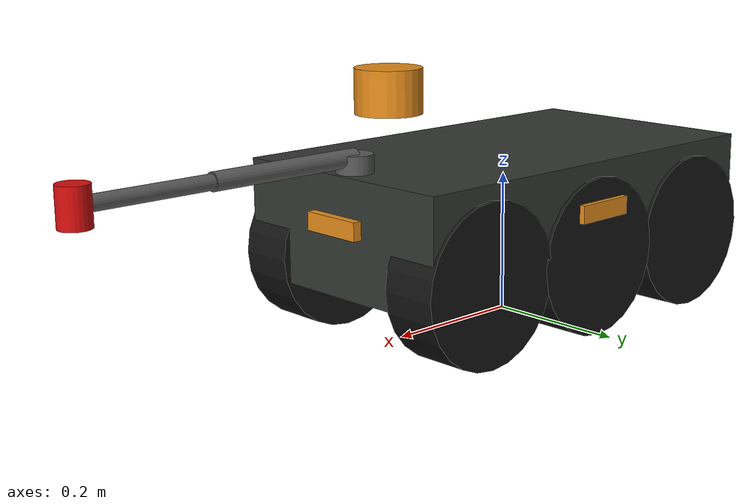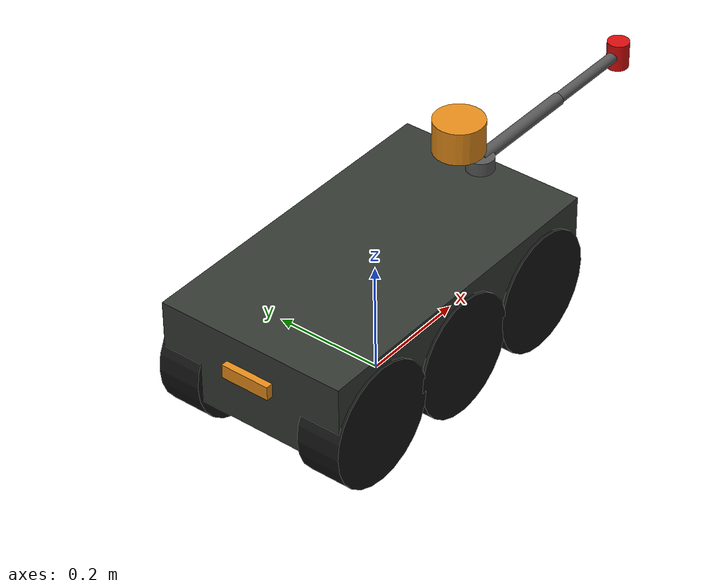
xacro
<?xml version="1.0"?>
<robot name="ares_g" xmlns:xacro="http://www.ros.org/wiki/xacro">

  <!-- ===================== Parameters (L0.3 spec) ===================== -->
  <xacro:property name="base_length" value="0.62"/>   <!-- 620 mm -->
  <xacro:property name="base_width"  value="0.35"/>   <!-- 350 mm -->
  <xacro:property name="base_height" value="0.16"/>   <!-- hull height -->
  <xacro:property name="ground_clearance" value="0.08"/>  <!-- 80 mm -->
  <xacro:property name="base_mass"   value="10.6"/>   <!-- hull+SEB+battery+detection+comms -->

  <xacro:property name="wheel_radius" value="0.11"/>  <!-- 220 mm dia -->
  <xacro:property name="wheel_width"  value="0.08"/>
  <xacro:property name="wheel_mass"   value="0.4"/>
  <xacro:property name="rocker_mass"  value="1.2"/>
  <xacro:property name="bogie_mass"   value="0.9"/>

  <!-- Longitudinal axle positions: wheelbase (front->rear) = 0.42 m -->
  <xacro:property name="axle_front_x" value="0.21"/>
  <xacro:property name="axle_mid_x"   value="0.0"/>
  <xacro:property name="axle_rear_x"  value="-0.21"/>
  <!-- Track 280 mm centre-centre -> half = 0.14 -->
  <xacro:property name="wheel_y"      value="0.14"/>
  <xacro:property name="wheel_z"      value="0.0"/>

  <!-- Rocker-bogie geometry -->
  <xacro:property name="rocker_y"       value="0.12"/>
  <xacro:property name="wheel_out"      value="0.02"/>
  <xacro:property name="rocker_z"       value="0.07"/>
  <xacro:property name="bogie_pivot_x"  value="0.105"/>
  <xacro:property name="wheel_drop"     value="${wheel_z - rocker_z}"/>
  <xacro:property name="pivot_limit"    value="0.6"/>
  <xacro:property name="steer_limit"    value="0.6"/>   <!-- kingpin travel (rad) -->

  <xacro:property name="PI" value="3.1415926535897931"/>

  <!-- ===================== Inertia macros ===================== -->
  <xacro:macro name="box_inertia" params="m x y z">
    <inertial>
      <mass value="${m}"/>
      <inertia
        ixx="${(1.0/12.0)*m*(y*y + z*z)}" ixy="0.0" ixz="0.0"
        iyy="${(1.0/12.0)*m*(x*x + z*z)}" iyz="0.0"
        izz="${(1.0/12.0)*m*(x*x + y*y)}"/>
    </inertial>
  </xacro:macro>

  <xacro:macro name="cylinder_inertia" params="m r h">
    <inertial>
      <mass value="${m}"/>
      <inertia
        ixx="${(1.0/12.0)*m*(3*r*r + h*h)}" ixy="0.0" ixz="0.0"
        iyy="${(1.0/12.0)*m*(3*r*r + h*h)}" iyz="0.0"
        izz="${0.5*m*r*r}"/>
    </inertial>
  </xacro:macro>

  <!-- ===================== base ===================== -->
  <link name="base_footprint"/>
  <joint name="base_footprint_joint" type="fixed">
    <parent link="base_footprint"/>
    <child link="base_link"/>
    <origin xyz="0 0 ${wheel_radius}" rpy="0 0 0"/>
  </joint>

  <link name="base_link">
    <!-- Hull sits from ground_clearance to ground_clearance+base_height;
         its centre is (ground_clearance + base_height/2 - wheel_radius) above base_link. -->
    <visual>
      <origin xyz="0 0 ${ground_clearance + base_height/2 - wheel_radius}" rpy="0 0 0"/>
      <geometry><box size="${base_length} ${base_width} ${base_height}"/></geometry>
      <material name="ares_hull"/>
    </visual>
    <collision>
      <origin xyz="0 0 ${ground_clearance + base_height/2 - wheel_radius}" rpy="0 0 0"/>
      <geometry><box size="${base_length} ${base_width} ${base_height}"/></geometry>
    </collision>
    <xacro:box_inertia m="${base_mass}" x="${base_length}" y="${base_width}" z="${base_height}"/>
  </link>

  <!-- ===================== Wheel macro ===================== -->
  <xacro:macro name="wheel" params="prefix parent x y z">
    <link name="${prefix}_wheel_link">
      <visual>
        <origin xyz="0 0 0" rpy="${PI/2} 0 0"/>
        <geometry><cylinder radius="${wheel_radius}" length="${wheel_width}"/></geometry>
        <material name="ares_wheel"/>
      </visual>
      <collision>
        <origin xyz="0 0 0" rpy="${PI/2} 0 0"/>
        <geometry><cylinder radius="${wheel_radius}" length="${wheel_width}"/></geometry>
      </collision>
      <xacro:cylinder_inertia m="${wheel_mass}" r="${wheel_radius}" h="${wheel_width}"/>
    </link>
    <joint name="${prefix}_wheel_joint" type="continuous">
      <parent link="${parent}"/>
      <child link="${prefix}_wheel_link"/>
      <origin xyz="${x} ${y} ${z}" rpy="0 0 0"/>
      <axis xyz="0 1 0"/>
      <limit effort="40.0" velocity="20.0"/>
      <dynamics damping="0.1" friction="0.1"/>
    </joint>
  </xacro:macro>

  <!-- Small steering knuckle link (kingpin) -->
  <xacro:macro name="knuckle" params="name">
    <link name="${name}">
      <visual>
        <geometry><cylinder radius="0.02" length="0.04"/></geometry>
        <material name="ares_steer"/>
      </visual>
      <xacro:cylinder_inertia m="0.05" r="0.02" h="0.04"/>
    </link>
  </xacro:macro>

  <!-- ===================== Rocker-bogie + four-station steering ===================== -->
  <!--   side="left"/"right", reflect=+1/-1 for +y/-y -->
  <xacro:macro name="rocker_bogie" params="side reflect">

    <!-- Rocker arm (passive pitch pivot on the body) -->
    <link name="${side}_rocker_link">
      <visual>
        <origin xyz="${(axle_rear_x + bogie_pivot_x)/2} 0 0" rpy="0 0 0"/>
        <geometry><box size="${bogie_pivot_x - axle_rear_x} 0.04 0.04"/></geometry>
        <material name="ares_link"/>
      </visual>
      <collision>
        <origin xyz="${(axle_rear_x + bogie_pivot_x)/2} 0 0" rpy="0 0 0"/>
        <geometry><box size="${bogie_pivot_x - axle_rear_x} 0.04 0.04"/></geometry>
      </collision>
      <xacro:box_inertia m="${rocker_mass}" x="${bogie_pivot_x - axle_rear_x}" y="0.04" z="0.04"/>
    </link>
    <joint name="${side}_rocker_joint" type="revolute">
      <parent link="base_link"/>
      <child link="${side}_rocker_link"/>
      <origin xyz="0 ${reflect * rocker_y} ${rocker_z}" rpy="0 0 0"/>
      <axis xyz="0 1 0"/>
      <limit lower="${-pivot_limit}" upper="${pivot_limit}" effort="200.0" velocity="10.0"/>
      <dynamics damping="1.0" friction="0.5"/>
    </joint>

    <!-- Bogie: passive pitch pivot on the rocker, then a kingpin steer joint -->
    <link name="${side}_bogie_link">
      <visual>
        <origin xyz="0 0 0" rpy="0 0 0"/>
        <geometry><box size="${axle_front_x - axle_mid_x} 0.04 0.04"/></geometry>
        <material name="ares_link"/>
      </visual>
      <collision>
        <origin xyz="0 0 0" rpy="0 0 0"/>
        <geometry><box size="${axle_front_x - axle_mid_x} 0.04 0.04"/></geometry>
      </collision>
      <xacro:box_inertia m="${bogie_mass}" x="${axle_front_x - axle_mid_x}" y="0.04" z="0.04"/>
    </link>
    <!-- passive bogie pitch pivot -->
    <xacro:knuckle name="${side}_bogie_carrier"/>
    <joint name="${side}_bogie_joint" type="revolute">
      <parent link="${side}_rocker_link"/>
      <child link="${side}_bogie_carrier"/>
      <origin xyz="${bogie_pivot_x} 0 0" rpy="0 0 0"/>
      <axis xyz="0 1 0"/>
      <limit lower="${-pivot_limit}" upper="${pivot_limit}" effort="200.0" velocity="10.0"/>
      <dynamics damping="1.0" friction="0.5"/>
    </joint>
    <joint name="${side}_bogie_steer_joint" type="revolute">
      <parent link="${side}_bogie_carrier"/>
      <child link="${side}_bogie_link"/>
      <origin xyz="0 0 0" rpy="0 0 0"/>
      <axis xyz="0 0 1"/>
      <limit lower="${-steer_limit}" upper="${steer_limit}" effort="30.0" velocity="3.0"/>
      <dynamics damping="0.3" friction="0.2"/>
    </joint>

    <!-- Front + mid wheels ride on the (steered) bogie -->
    <xacro:wheel prefix="front_${side}" parent="${side}_bogie_link"
                x="${axle_front_x - bogie_pivot_x}" y="${reflect * wheel_out}" z="${wheel_drop}"/>
    <xacro:wheel prefix="mid_${side}" parent="${side}_bogie_link"
                x="${axle_mid_x - bogie_pivot_x}" y="${reflect * wheel_out}" z="${wheel_drop}"/>

    <!-- STEERED STATION #3/#4: rear wheel kingpin (individually steered).
         Real revolute kingpin, position-actuated (see note above). -->
    <xacro:knuckle name="${side}_rear_knuckle"/>
    <joint name="${side}_rear_steer_joint" type="revolute">
      <parent link="${side}_rocker_link"/>
      <child link="${side}_rear_knuckle"/>
      <origin xyz="${axle_rear_x} ${reflect * wheel_out} ${wheel_drop}" rpy="0 0 0"/>
      <axis xyz="0 0 1"/>
      <limit lower="${-steer_limit}" upper="${steer_limit}" effort="30.0" velocity="3.0"/>
      <dynamics damping="0.3" friction="0.2"/>
    </joint>
    <xacro:wheel prefix="rear_${side}" parent="${side}_rear_knuckle"
                x="0" y="0" z="0"/>

  </xacro:macro>

  <xacro:rocker_bogie side="left"  reflect="1"/>
  <xacro:rocker_bogie side="right" reflect="-1"/>

  <!-- ===================== Sensor mounts (L0.3 6.1) ===================== -->
  <!-- Sensor mast: LiDAR (Livox Mid-360 class) on top-front -->
  <link name="lidar_link">
    <visual>
      <geometry><cylinder radius="0.045" length="0.06"/></geometry>
      <material name="ares_sensor"/>
    </visual>
    <collision><geometry><cylinder radius="0.045" length="0.06"/></geometry></collision>
    <xacro:cylinder_inertia m="0.3" r="0.045" h="0.06"/>
  </link>
  <joint name="lidar_joint" type="fixed">
    <parent link="base_link"/>
    <child link="lidar_link"/>
    <origin xyz="0.22 0 ${ground_clearance + base_height - wheel_radius + 0.10}" rpy="0 0 0"/>
  </joint>

  <!-- IMU (VN-200 class) at the body centre -->
  <link name="imu_link">
    <visual><geometry><box size="0.03 0.03 0.01"/></geometry><material name="ares_sensor"/></visual>
    <xacro:box_inertia m="0.05" x="0.03" y="0.03" z="0.01"/>
  </link>
  <joint name="imu_joint" type="fixed">
    <parent link="base_link"/><child link="imu_link"/>
    <origin xyz="0 0 ${ground_clearance + base_height/2 - wheel_radius}" rpy="0 0 0"/>
  </joint>

  <!-- Forward stereo (RealSense D455 class) -->
  <xacro:macro name="cam" params="name x y z yaw">
    <link name="${name}_link">
      <visual><geometry><box size="0.025 0.09 0.025"/></geometry><material name="ares_sensor"/></visual>
      <xacro:box_inertia m="0.07" x="0.025" y="0.09" z="0.025"/>
    </link>
    <joint name="${name}_joint" type="fixed">
      <parent link="base_link"/><child link="${name}_link"/>
      <origin xyz="${x} ${y} ${z}" rpy="0 0 ${yaw}"/>
    </joint>
    <link name="${name}_optical_link"/>
    <joint name="${name}_optical_joint" type="fixed">
      <parent link="${name}_link"/><child link="${name}_optical_link"/>
      <origin xyz="0 0 0" rpy="${-PI/2} 0 ${-PI/2}"/>
    </joint>
  </xacro:macro>
  <xacro:cam name="front_cam" x="${base_length/2}" y="0"    z="${ground_clearance + base_height*0.6 - wheel_radius}" yaw="0"/>
  <xacro:cam name="left_cam"  x="0" y="${base_width/2}"  z="${ground_clearance + base_height*0.6 - wheel_radius}" yaw="${PI/2}"/>
  <xacro:cam name="rear_cam"  x="${-base_length/2}" y="0" z="${ground_clearance + base_height*0.6 - wheel_radius}" yaw="${PI}"/>

  <!-- ===================== Marker arm (L0.3 6.5): 2-DOF, 0.40 m reach ===================== -->
  <link name="marker_base_link">
    <visual><geometry><cylinder radius="0.025" length="0.05"/></geometry><material name="ares_link"/></visual>
    <xacro:cylinder_inertia m="0.1" r="0.025" h="0.05"/>
  </link>
  <joint name="marker_base_joint" type="fixed">
    <parent link="base_link"/><child link="marker_base_link"/>
    <origin xyz="${base_length/2 - 0.03} 0 ${ground_clearance + base_height - wheel_radius}" rpy="0 0 0"/>
  </joint>

  <!-- Shoulder: pitch -->
  <link name="marker_link1">
    <visual><origin xyz="0.11 0 0" rpy="0 ${PI/2} 0"/>
      <geometry><cylinder radius="0.012" length="0.22"/></geometry><material name="ares_link"/></visual>
    <xacro:cylinder_inertia m="0.15" r="0.012" h="0.22"/>
  </link>
  <joint name="marker_shoulder_joint" type="revolute">
    <parent link="marker_base_link"/><child link="marker_link1"/>
    <origin xyz="0 0 0.02" rpy="0 0 0"/>
    <axis xyz="0 1 0"/>
    <limit lower="${-PI/2}" upper="${PI/2}" effort="10.0" velocity="2.0"/>
    <dynamics damping="0.2" friction="0.1"/>
  </joint>

  <!-- Elbow: pitch, ends in the paint-canister tip -->
  <link name="marker_link2">
    <visual><origin xyz="0.09 0 0" rpy="0 ${PI/2} 0"/>
      <geometry><cylinder radius="0.010" length="0.18"/></geometry><material name="ares_link"/></visual>
    <visual><origin xyz="0.18 0 0" rpy="0 0 0"/>
      <geometry><cylinder radius="0.02" length="0.05"/></geometry><material name="ares_marker"/></visual>
    <xacro:cylinder_inertia m="0.15" r="0.010" h="0.18"/>
  </link>
  <joint name="marker_elbow_joint" type="revolute">
    <parent link="marker_link1"/><child link="marker_link2"/>
    <origin xyz="0.22 0 0" rpy="0 0 0"/>
    <axis xyz="0 1 0"/>
    <limit lower="${-PI/2}" upper="${PI/2}" effort="10.0" velocity="2.0"/>
    <dynamics damping="0.2" friction="0.1"/>
  </joint>

  <!-- ===================== Drive/actuation args ===================== -->
  <!-- When true, the diff-drive plugin publishes odom->base_footprint (fine for
       the bare sim); set false when robot_localization owns that TF. -->
  <xacro:arg name="publish_wheel_odom_tf" default="true"/>
  <xacro:arg name="cmd_vel_topic" default="wheel_cmd_vel"/>

  <!-- Materials + Gazebo plugins (drive, steering, sensors) -->
  <xacro:include filename="$(find rover_description)/urdf/ares_g.gazebo.xacro"/>

</robot>

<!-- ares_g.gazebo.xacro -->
<robot xmlns:xacro="http://www.ros.org/wiki/xacro">

  <xacro:arg name="publish_wheel_odom_tf" default="true"/>
  <xacro:arg name="cmd_vel_topic" default="wheel_cmd_vel"/>

  <!-- Camera sensors need a GL/rendering context; disable them for headless
       gzserver on machines without a GPU (Codespaces) to avoid a crash. -->
  <xacro:arg name="enable_cameras" default="true"/>

  <!-- ===================== RViz visual materials ===================== -->
  <material name="ares_hull">   <color rgba="0.20 0.22 0.20 1.0"/></material>
  <material name="ares_wheel">  <color rgba="0.08 0.08 0.08 1.0"/></material>
  <material name="ares_link">   <color rgba="0.35 0.35 0.35 1.0"/></material>
  <material name="ares_steer">  <color rgba="0.55 0.55 0.10 1.0"/></material>
  <material name="ares_sensor"> <color rgba="0.90 0.55 0.10 1.0"/></material>
  <material name="ares_marker"> <color rgba="0.85 0.05 0.05 1.0"/></material>

  <!-- ===================== Gazebo visual colours ===================== -->
  <gazebo reference="base_link"><material>Gazebo/DarkGrey</material></gazebo>
  <gazebo reference="lidar_link"><material>Gazebo/Orange</material></gazebo>
  <gazebo reference="imu_link"><material>Gazebo/Orange</material></gazebo>
  <gazebo reference="front_cam_link"><material>Gazebo/Orange</material></gazebo>
  <gazebo reference="left_cam_link"><material>Gazebo/Orange</material></gazebo>
  <gazebo reference="rear_cam_link"><material>Gazebo/Orange</material></gazebo>
  <gazebo reference="left_rocker_link"><material>Gazebo/DarkGrey</material></gazebo>
  <gazebo reference="right_rocker_link"><material>Gazebo/DarkGrey</material></gazebo>
  <gazebo reference="left_bogie_link"><material>Gazebo/Grey</material></gazebo>
  <gazebo reference="right_bogie_link"><material>Gazebo/Grey</material></gazebo>
  <gazebo reference="marker_link2"><material>Gazebo/Red</material></gazebo>

  <!-- Wheel friction: high mu for traction on the rocker-bogie -->
  <xacro:macro name="wheel_gazebo" params="prefix">
    <gazebo reference="${prefix}_wheel_link">
      <material>Gazebo/Black</material>
      <mu1>1.3</mu1>
      <mu2>1.3</mu2>
      <kp>500000.0</kp>
      <kd>10.0</kd>
      <minDepth>0.001</minDepth>
      <maxVel>10.0</maxVel>
      <fdir1>1 0 0</fdir1>
    </gazebo>
  </xacro:macro>
  <xacro:wheel_gazebo prefix="front_left"/>
  <xacro:wheel_gazebo prefix="front_right"/>
  <xacro:wheel_gazebo prefix="mid_left"/>
  <xacro:wheel_gazebo prefix="mid_right"/>
  <xacro:wheel_gazebo prefix="rear_left"/>
  <xacro:wheel_gazebo prefix="rear_right"/>

  <!-- ===================== Skid-steer drive (3 wheel pairs, ARES-G dims) ===================== -->
  <!-- Proven gazebo_ros plugin: reliable motion + /odom. Skid-steer is the L0.3
       degraded-mode fallback; the four kingpins add real steering on top. -->
  <gazebo>
    <plugin name="diff_drive" filename="libgazebo_ros_diff_drive.so">
      <ros>
        <namespace>/</namespace>
        <remapping>cmd_vel:=$(arg cmd_vel_topic)</remapping>
      </ros>
      <num_wheel_pairs>3</num_wheel_pairs>
      <left_joint>front_left_wheel_joint</left_joint>
      <right_joint>front_right_wheel_joint</right_joint>
      <left_joint>mid_left_wheel_joint</left_joint>
      <right_joint>mid_right_wheel_joint</right_joint>
      <left_joint>rear_left_wheel_joint</left_joint>
      <right_joint>rear_right_wheel_joint</right_joint>
      <!-- ARES-G: track 0.28 m (centre-centre), wheel dia 0.22 m -->
      <wheel_separation>0.28</wheel_separation>
      <wheel_separation>0.28</wheel_separation>
      <wheel_separation>0.28</wheel_separation>
      <wheel_diameter>0.22</wheel_diameter>
      <wheel_diameter>0.22</wheel_diameter>
      <wheel_diameter>0.22</wheel_diameter>
      <max_wheel_torque>40.0</max_wheel_torque>
      <max_wheel_acceleration>2.0</max_wheel_acceleration>
      <odometry_frame>odom</odometry_frame>
      <robot_base_frame>base_footprint</robot_base_frame>
      <publish_odom>true</publish_odom>
      <publish_odom_tf>$(arg publish_wheel_odom_tf)</publish_odom_tf>
      <publish_wheel_tf>false</publish_wheel_tf>
      <update_rate>50.0</update_rate>
    </plugin>
  </gazebo>

  <!-- Joint states for ALL joints (wheels, steered kingpins, passive pivots,
       marker arm) so robot_state_publisher builds the full articulated TF. -->
  <gazebo>
    <plugin name="joint_states" filename="libgazebo_ros_joint_state_publisher.so">
      <ros>
        <namespace>/</namespace>
        <remapping>~/out:=joint_states</remapping>
      </ros>
      <update_rate>50</update_rate>
      <joint_name>front_left_wheel_joint</joint_name>
      <joint_name>front_right_wheel_joint</joint_name>
      <joint_name>mid_left_wheel_joint</joint_name>
      <joint_name>mid_right_wheel_joint</joint_name>
      <joint_name>rear_left_wheel_joint</joint_name>
      <joint_name>rear_right_wheel_joint</joint_name>
      <joint_name>left_bogie_steer_joint</joint_name>
      <joint_name>right_bogie_steer_joint</joint_name>
      <joint_name>left_rear_steer_joint</joint_name>
      <joint_name>right_rear_steer_joint</joint_name>
      <joint_name>left_rocker_joint</joint_name>
      <joint_name>right_rocker_joint</joint_name>
      <joint_name>left_bogie_joint</joint_name>
      <joint_name>right_bogie_joint</joint_name>
      <joint_name>marker_shoulder_joint</joint_name>
      <joint_name>marker_elbow_joint</joint_name>
    </plugin>
  </gazebo>

  <gazebo>
    <plugin name="joint_pose_trajectory" filename="libgazebo_ros_joint_pose_trajectory.so">
      <ros>
        <namespace>/</namespace>
      </ros>
      <update_rate>50</update_rate>
    </plugin>
  </gazebo>

  <!-- ===================== LiDAR: Livox Mid-360 class (360 x 59 deg) ===================== -->
  <gazebo reference="lidar_link">
    <sensor type="ray" name="livox_mid360">
      <pose>0 0 0 0 0 0</pose>
      <visualize>false</visualize>
      <update_rate>10</update_rate>
      <ray>
        <scan>
          <horizontal>
            <samples>360</samples>
            <resolution>1</resolution>
            <min_angle>-3.14159</min_angle>
            <max_angle>3.14159</max_angle>
          </horizontal>
          <!-- Mid-360 vertical FOV: -7 deg to +52 deg (59 deg total).
               24 layers keeps the CPU ray sensor light for headless sim. -->
          <vertical>
            <samples>24</samples>
            <resolution>1</resolution>
            <min_angle>-0.12217</min_angle>
            <max_angle>0.90757</max_angle>
          </vertical>
        </scan>
        <range>
          <min>0.10</min>
          <max>40.0</max>
          <resolution>0.01</resolution>
        </range>
        <noise>
          <type>gaussian</type>
          <mean>0.0</mean>
          <stddev>0.02</stddev>
        </noise>
      </ray>
      <plugin name="lidar_plugin" filename="libgazebo_ros_ray_sensor.so">
        <ros>
          <namespace>/</namespace>
          <remapping>~/out:=points</remapping>
        </ros>
        <output_type>sensor_msgs/PointCloud2</output_type>
        <frame_name>lidar_link</frame_name>
      </plugin>
    </sensor>
  </gazebo>

  <!-- ===================== IMU: VN-200 class ===================== -->
  <gazebo reference="imu_link">
    <sensor name="vn200_imu" type="imu">
      <always_on>true</always_on>
      <update_rate>200</update_rate>
      <visualize>false</visualize>
      <imu>
        <angular_velocity>
          <x><noise type="gaussian"><mean>0.0</mean><stddev>1.4e-4</stddev></noise></x>
          <y><noise type="gaussian"><mean>0.0</mean><stddev>1.4e-4</stddev></noise></y>
          <z><noise type="gaussian"><mean>0.0</mean><stddev>1.4e-4</stddev></noise></z>
        </angular_velocity>
        <linear_acceleration>
          <x><noise type="gaussian"><mean>0.0</mean><stddev>1.4e-2</stddev></noise></x>
          <y><noise type="gaussian"><mean>0.0</mean><stddev>1.4e-2</stddev></noise></y>
          <z><noise type="gaussian"><mean>0.0</mean><stddev>1.4e-2</stddev></noise></z>
        </linear_acceleration>
      </imu>
      <plugin name="imu_plugin" filename="libgazebo_ros_imu_sensor.so">
        <ros>
          <namespace>/</namespace>
          <remapping>~/out:=imu</remapping>
        </ros>
        <frame_name>imu_link</frame_name>
        <initial_orientation_as_reference>false</initial_orientation_as_reference>
      </plugin>
    </sensor>
  </gazebo>

  <!-- ===================== Cameras (need a GL context; toggle for headless) ===================== -->
  <xacro:if value="$(arg enable_cameras)">
  <!-- ===================== Forward depth camera: RealSense D455 class ===================== -->
  <gazebo reference="front_cam_link">
    <sensor type="depth" name="front_d455">
      <update_rate>30</update_rate>
      <visualize>false</visualize>
      <camera name="front_d455">
        <horizontal_fov>1.5184</horizontal_fov>   <!-- ~87 deg (D455) -->
        <image>
          <width>848</width>
          <height>480</height>
          <format>R8G8B8</format>
        </image>
        <clip>
          <near>0.2</near>
          <far>20.0</far>
        </clip>
      </camera>
      <plugin name="front_cam_plugin" filename="libgazebo_ros_camera.so">
        <ros>
          <namespace>/</namespace>
        </ros>
        <camera_name>front_cam</camera_name>
        <frame_name>front_cam_optical_link</frame_name>
        <min_depth>0.2</min_depth>
        <max_depth>20.0</max_depth>
      </plugin>
    </sensor>
  </gazebo>

  <!-- ===================== Side + rear cameras: RealSense D435i class ===================== -->
  <xacro:macro name="d435i" params="name">
    <gazebo reference="${name}_link">
      <sensor type="camera" name="${name}_d435i">
        <update_rate>30</update_rate>
        <visualize>false</visualize>
        <camera name="${name}_d435i">
          <horizontal_fov>1.5184</horizontal_fov>
          <image>
            <width>640</width>
            <height>480</height>
            <format>R8G8B8</format>
          </image>
          <clip>
            <near>0.1</near>
            <far>15.0</far>
          </clip>
        </camera>
        <plugin name="${name}_plugin" filename="libgazebo_ros_camera.so">
          <ros>
            <namespace>/</namespace>
          </ros>
          <camera_name>${name}</camera_name>
          <frame_name>${name}_optical_link</frame_name>
        </plugin>
      </sensor>
    </gazebo>
  </xacro:macro>
  <xacro:d435i name="left_cam"/>
  <xacro:d435i name="rear_cam"/>
  </xacro:if>

</robot>
